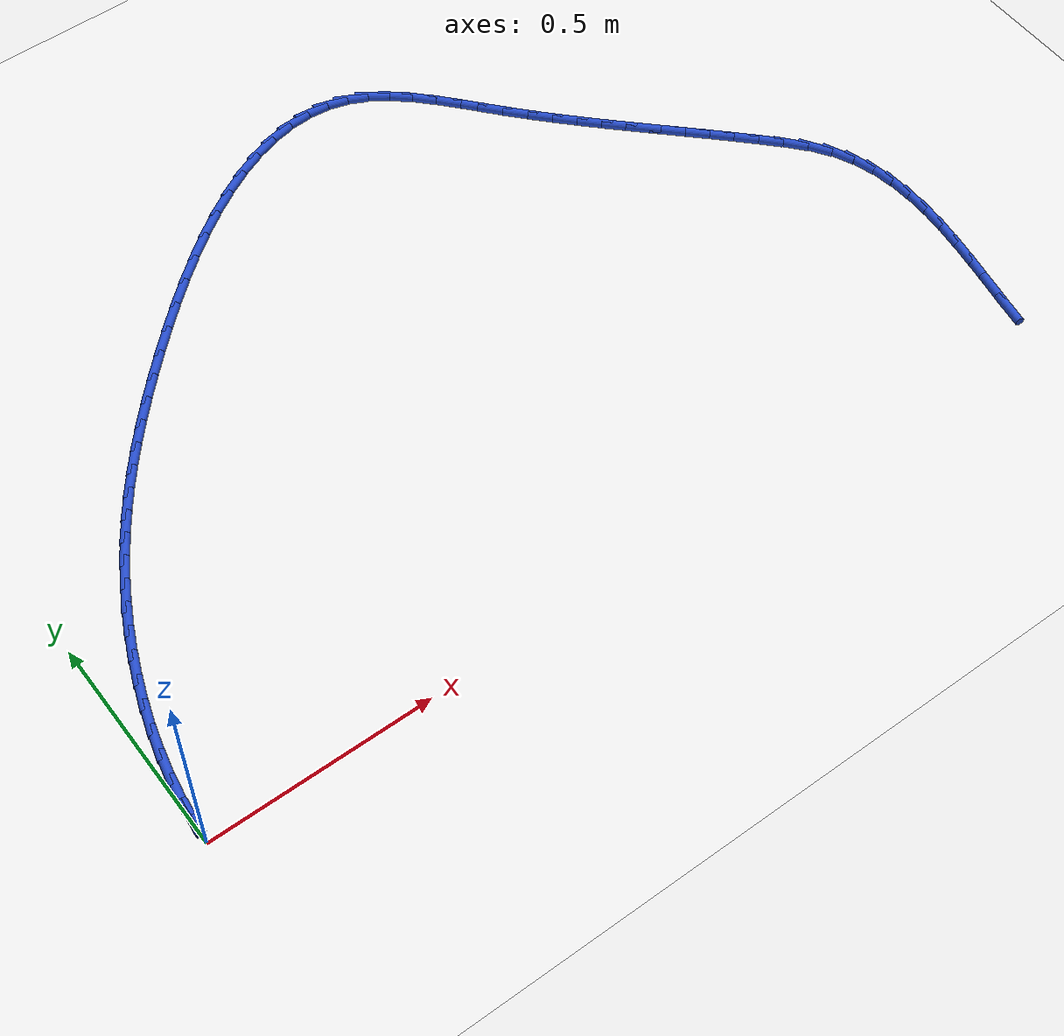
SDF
<sdf version="1.6">
 <world name="default">
  <model name="ground_plane">
   <static>1</static>
   <link name="link">
    <collision name="collision">
     <geometry><plane><normal>0 0 1</normal><size>100 100</size></plane></geometry>
     <surface><friction><ode><mu>100</mu><mu2>50</mu2></ode></friction></surface>
    </collision>
    <visual name="visual">
     <cast_shadows>0</cast_shadows>
     <geometry><plane><normal>0 0 1</normal><size>100 100</size></plane></geometry>
     <material>
      <script><uri>file://media/materials/scripts/gazebo.material</uri><name>Gazebo/WhiteGlow</name></script>
     </material>
    </visual>
   </link>
  </model>
  <model name="line">
   <link name="link_1">
    <pose>0.002819919570974146 0.056490121676329885 0.01 0 1.57 1.4621174501277217</pose>
    <collision name="collision">
     <geometry><cylinder><radius>0.01</radius><length>0.08</length></cylinder></geometry>
    </collision>
    <visual name="visual">
     <material>
      <script><name>Gazebo/Blue</name><uri>file://media/materials/scripts/gazebo.material</uri></script>
     </material>
     <geometry><cylinder><radius>0.01</radius><length>0.08</length></cylinder></geometry>
    </visual>
   </link>
   <link name="link_2">
    <pose>0.008960273449039987 0.11276747965549035 0.01 0 1.57 1.4073476853704212</pose>
    <collision name="collision">
     <geometry><cylinder><radius>0.01</radius><length>0.08</length></cylinder></geometry>
    </collision>
    <visual name="visual">
     <material>
      <script><name>Gazebo/Blue</name><uri>file://media/materials/scripts/gazebo.material</uri></script>
     </material>
     <geometry><cylinder><radius>0.01</radius><length>0.08</length></cylinder></geometry>
    </visual>
   </link>
   <link name="link_3">
    <pose>0.01817760805894254 0.168657245358841 0.01 0 1.57 1.3563356559412718</pose>
    <collision name="collision">
     <geometry><cylinder><radius>0.01</radius><length>0.08</length></cylinder></geometry>
    </collision>
    <visual name="visual">
     <material>
      <script><name>Gazebo/Blue</name><uri>file://media/materials/scripts/gazebo.material</uri></script>
     </material>
     <geometry><cylinder><radius>0.01</radius><length>0.08</length></cylinder></geometry>
    </visual>
   </link>
   <link name="link_4">
    <pose>0.030228469825426825 0.22398459020774156 0.01 0 1.57 1.3087651385781736</pose>
    <collision name="collision">
     <geometry><cylinder><radius>0.01</radius><length>0.08</length></cylinder></geometry>
    </collision>
    <visual name="visual">
     <material>
      <script><name>Gazebo/Blue</name><uri>file://media/materials/scripts/gazebo.material</uri></script>
     </material>
     <geometry><cylinder><radius>0.01</radius><length>0.08</length></cylinder></geometry>
    </visual>
   </link>
   <link name="link_5">
    <pose>0.0448694051732378 0.27857468562355153 0.01 0 1.57 1.2642975209456055</pose>
    <collision name="collision">
     <geometry><cylinder><radius>0.01</radius><length>0.08</length></cylinder></geometry>
    </collision>
    <visual name="visual">
     <material>
      <script><name>Gazebo/Blue</name><uri>file://media/materials/scripts/gazebo.material</uri></script>
     </material>
     <geometry><cylinder><radius>0.01</radius><length>0.08</length></cylinder></geometry>
    </visual>
   </link>
   <link name="link_6">
    <pose>0.0618569605271205 0.3322527030276306 0.01 0 1.57 1.2225849859284923</pose>
    <collision name="collision">
     <geometry><cylinder><radius>0.01</radius><length>0.08</length></cylinder></geometry>
    </collision>
    <visual name="visual">
     <material>
      <script><name>Gazebo/Blue</name><uri>file://media/materials/scripts/gazebo.material</uri></script>
     </material>
     <geometry><cylinder><radius>0.01</radius><length>0.08</length></cylinder></geometry>
    </visual>
   </link>
   <link name="link_7">
    <pose>0.08094768231181988 0.38484381384133826 0.01 0 1.57 1.1832780474981412</pose>
    <collision name="collision">
     <geometry><cylinder><radius>0.01</radius><length>0.08</length></cylinder></geometry>
    </collision>
    <visual name="visual">
     <material>
      <script><name>Gazebo/Blue</name><uri>file://media/materials/scripts/gazebo.material</uri></script>
     </material>
     <geometry><cylinder><radius>0.01</radius><length>0.08</length></cylinder></geometry>
    </visual>
   </link>
   <link name="link_8">
    <pose>0.10189811695208095 0.43617318948603423 0.01 0 1.57 1.145996750374766</pose>
    <collision name="collision">
     <geometry><cylinder><radius>0.01</radius><length>0.08</length></cylinder></geometry>
    </collision>
    <visual name="visual">
     <material>
      <script><name>Gazebo/Blue</name><uri>file://media/materials/scripts/gazebo.material</uri></script>
     </material>
     <geometry><cylinder><radius>0.01</radius><length>0.08</length></cylinder></geometry>
    </visual>
   </link>
   <link name="link_9">
    <pose>0.12446895710282029 0.48607095541483086 0.01 0 1.57 1.109494843385933</pose>
    <collision name="collision">
     <geometry><cylinder><radius>0.01</radius><length>0.08</length></cylinder></geometry>
    </collision>
    <visual name="visual">
     <material>
      <script><name>Gazebo/Blue</name><uri>file://media/materials/scripts/gazebo.material</uri></script>
     </material>
     <geometry><cylinder><radius>0.01</radius><length>0.08</length></cylinder></geometry>
    </visual>
   </link>
   <link name="link_10">
    <pose>0.14855567423796337 0.5345282745826981 0.01 0 1.57 1.072863857502739</pose>
    <collision name="collision">
     <geometry><cylinder><radius>0.01</radius><length>0.08</length></cylinder></geometry>
    </collision>
    <visual name="visual">
     <material>
      <script><name>Gazebo/Blue</name><uri>file://media/materials/scripts/gazebo.material</uri></script>
     </material>
     <geometry><cylinder><radius>0.01</radius><length>0.08</length></cylinder></geometry>
    </visual>
   </link>
   <link name="link_11">
    <pose>0.17421491539654277 0.5817288870168512 0.01 0 1.57 1.0365428703813302</pose>
    <collision name="collision">
     <geometry><cylinder><radius>0.01</radius><length>0.08</length></cylinder></geometry>
    </collision>
    <visual name="visual">
     <material>
      <script><name>Gazebo/Blue</name><uri>file://media/materials/scripts/gazebo.material</uri></script>
     </material>
     <geometry><cylinder><radius>0.01</radius><length>0.08</length></cylinder></geometry>
    </visual>
   </link>
   <link name="link_12">
    <pose>0.20151280619651218 0.6278678580156556 0.01 0 1.57 1.0010392766066787</pose>
    <collision name="collision">
     <geometry><cylinder><radius>0.01</radius><length>0.08</length></cylinder></geometry>
    </collision>
    <visual name="visual">
     <material>
      <script><name>Gazebo/Blue</name><uri>file://media/materials/scripts/gazebo.material</uri></script>
     </material>
     <geometry><cylinder><radius>0.01</radius><length>0.08</length></cylinder></geometry>
    </visual>
   </link>
   <link name="link_13">
    <pose>0.230515472255825 0.6731402528774764 0.01 0 1.57 0.9668291918626433</pose>
    <collision name="collision">
     <geometry><cylinder><radius>0.01</radius><length>0.08</length></cylinder></geometry>
    </collision>
    <visual name="visual">
     <material>
      <script><name>Gazebo/Blue</name><uri>file://media/materials/scripts/gazebo.material</uri></script>
     </material>
     <geometry><cylinder><radius>0.01</radius><length>0.08</length></cylinder></geometry>
    </visual>
   </link>
   <link name="link_14">
    <pose>0.261289039192435 0.7177411369006796 0.01 0 1.57 0.9343338689393622</pose>
    <collision name="collision">
     <geometry><cylinder><radius>0.01</radius><length>0.08</length></cylinder></geometry>
    </collision>
    <visual name="visual">
     <material>
      <script><name>Gazebo/Blue</name><uri>file://media/materials/scripts/gazebo.material</uri></script>
     </material>
     <geometry><cylinder><radius>0.01</radius><length>0.08</length></cylinder></geometry>
    </visual>
   </link>
   <link name="link_15">
    <pose>0.29389963262429575 0.7618655753836305 0.01 0 1.57 0.9039022386405081</pose>
    <collision name="collision">
     <geometry><cylinder><radius>0.01</radius><length>0.08</length></cylinder></geometry>
    </collision>
    <visual name="visual">
     <material>
      <script><name>Gazebo/Blue</name><uri>file://media/materials/scripts/gazebo.material</uri></script>
     </material>
     <geometry><cylinder><radius>0.01</radius><length>0.08</length></cylinder></geometry>
    </visual>
   </link>
   <link name="link_16">
    <pose>0.32841337816936067 0.8057086336246942 0.01 0 1.57 0.8758008942139772</pose>
    <collision name="collision">
     <geometry><cylinder><radius>0.01</radius><length>0.08</length></cylinder></geometry>
    </collision>
    <visual name="visual">
     <material>
      <script><name>Gazebo/Blue</name><uri>file://media/materials/scripts/gazebo.material</uri></script>
     </material>
     <geometry><cylinder><radius>0.01</radius><length>0.08</length></cylinder></geometry>
    </visual>
   </link>
   <link name="link_17">
    <pose>0.3648964014455836 0.8494653769222366 0.01 0 1.57 0.8502115110153994</pose>
    <collision name="collision">
     <geometry><cylinder><radius>0.01</radius><length>0.08</length></cylinder></geometry>
    </collision>
    <visual name="visual">
     <material>
      <script><name>Gazebo/Blue</name><uri>file://media/materials/scripts/gazebo.material</uri></script>
     </material>
     <geometry><cylinder><radius>0.01</radius><length>0.08</length></cylinder></geometry>
    </visual>
   </link>
   <link name="link_18">
    <pose>0.4034148280709179 0.8933308705746227 0.01 0 1.57 0.8272346232028235</pose>
    <collision name="collision">
     <geometry><cylinder><radius>0.01</radius><length>0.08</length></cylinder></geometry>
    </collision>
    <visual name="visual">
     <material>
      <script><name>Gazebo/Blue</name><uri>file://media/materials/scripts/gazebo.material</uri></script>
     </material>
     <geometry><cylinder><radius>0.01</radius><length>0.08</length></cylinder></geometry>
    </visual>
   </link>
   <link name="link_19">
    <pose>0.4440347836633174 0.9375001798802183 0.01 0 1.57 0.8068980558954781</pose>
    <collision name="collision">
     <geometry><cylinder><radius>0.01</radius><length>0.08</length></cylinder></geometry>
    </collision>
    <visual name="visual">
     <material>
      <script><name>Gazebo/Blue</name><uri>file://media/materials/scripts/gazebo.material</uri></script>
     </material>
     <geometry><cylinder><radius>0.01</radius><length>0.08</length></cylinder></geometry>
    </visual>
   </link>
   <link name="link_20">
    <pose>0.48682239384073556 0.9821683701373887 0.01 0 1.57 0.7886387347803969</pose>
    <collision name="collision">
     <geometry><cylinder><radius>0.01</radius><length>0.08</length></cylinder></geometry>
    </collision>
    <visual name="visual">
     <material>
      <script><name>Gazebo/Blue</name><uri>file://media/materials/scripts/gazebo.material</uri></script>
     </material>
     <geometry><cylinder><radius>0.01</radius><length>0.08</length></cylinder></geometry>
    </visual>
   </link>
   <link name="link_21">
    <pose>0.5318098261136897 1.0274483213339718 0.01 0 1.57 0.7687296846587847</pose>
    <collision name="collision">
     <geometry><cylinder><radius>0.01</radius><length>0.08</length></cylinder></geometry>
    </collision>
    <visual name="visual">
     <material>
      <script><name>Gazebo/Blue</name><uri>file://media/materials/scripts/gazebo.material</uri></script>
     </material>
     <geometry><cylinder><radius>0.01</radius><length>0.08</length></cylinder></geometry>
    </visual>
   </link>
   <link name="link_22">
    <pose>0.578799614929389 1.0728971562015825 0.01 0 1.57 0.7453216884678633</pose>
    <collision name="collision">
     <geometry><cylinder><radius>0.01</radius><length>0.08</length></cylinder></geometry>
    </collision>
    <visual name="visual">
     <material>
      <script><name>Gazebo/Blue</name><uri>file://media/materials/scripts/gazebo.material</uri></script>
     </material>
     <geometry><cylinder><radius>0.01</radius><length>0.08</length></cylinder></geometry>
    </visual>
   </link>
   <link name="link_23">
    <pose>0.6274991670624809 1.1178417697618857 0.01 0 1.57 0.7178650219491076</pose>
    <collision name="collision">
     <geometry><cylinder><radius>0.01</radius><length>0.08</length></cylinder></geometry>
    </collision>
    <visual name="visual">
     <material>
      <script><name>Gazebo/Blue</name><uri>file://media/materials/scripts/gazebo.material</uri></script>
     </material>
     <geometry><cylinder><radius>0.01</radius><length>0.08</length></cylinder></geometry>
    </visual>
   </link>
   <link name="link_24">
    <pose>0.6776155844054452 1.1616083191616333 0.01 0 1.57 0.6856206827919231</pose>
    <collision name="collision">
     <geometry><cylinder><radius>0.01</radius><length>0.08</length></cylinder></geometry>
    </collision>
    <visual name="visual">
     <material>
      <script><name>Gazebo/Blue</name><uri>file://media/materials/scripts/gazebo.material</uri></script>
     </material>
     <geometry><cylinder><radius>0.01</radius><length>0.08</length></cylinder></geometry>
    </visual>
   </link>
   <link name="link_25">
    <pose>0.7288559688507629 1.2035229615475784 0.01 0 1.57 0.6476095234773996</pose>
    <collision name="collision">
     <geometry><cylinder><radius>0.01</radius><length>0.08</length></cylinder></geometry>
    </collision>
    <visual name="visual">
     <material>
      <script><name>Gazebo/Blue</name><uri>file://media/materials/scripts/gazebo.material</uri></script>
     </material>
     <geometry><cylinder><radius>0.01</radius><length>0.08</length></cylinder></geometry>
    </visual>
   </link>
   <link name="link_26">
    <pose>0.7809274222909137 1.2429118540664734 0.01 0 1.57 0.6025478072712656</pose>
    <collision name="collision">
     <geometry><cylinder><radius>0.01</radius><length>0.08</length></cylinder></geometry>
    </collision>
    <visual name="visual">
     <material>
      <script><name>Gazebo/Blue</name><uri>file://media/materials/scripts/gazebo.material</uri></script>
     </material>
     <geometry><cylinder><radius>0.01</radius><length>0.08</length></cylinder></geometry>
    </visual>
   </link>
   <link name="link_27">
    <pose>0.8335370466183781 1.2791011538650707 0.01 0 1.57 0.5487649475698154</pose>
    <collision name="collision">
     <geometry><cylinder><radius>0.01</radius><length>0.08</length></cylinder></geometry>
    </collision>
    <visual name="visual">
     <material>
      <script><name>Gazebo/Blue</name><uri>file://media/materials/scripts/gazebo.material</uri></script>
     </material>
     <geometry><cylinder><radius>0.01</radius><length>0.08</length></cylinder></geometry>
    </visual>
   </link>
   <link name="link_28">
    <pose>0.8863919437256369 1.3114170180901232 0.01 0 1.57 0.48411135698266355</pose>
    <collision name="collision">
     <geometry><cylinder><radius>0.01</radius><length>0.08</length></cylinder></geometry>
    </collision>
    <visual name="visual">
     <material>
      <script><name>Gazebo/Blue</name><uri>file://media/materials/scripts/gazebo.material</uri></script>
     </material>
     <geometry><cylinder><radius>0.01</radius><length>0.08</length></cylinder></geometry>
    </visual>
   </link>
   <link name="link_29">
    <pose>0.9391992155051698 1.3391856038883834 0.01 0 1.57 0.4058851109227557</pose>
    <collision name="collision">
     <geometry><cylinder><radius>0.01</radius><length>0.08</length></cylinder></geometry>
    </collision>
    <visual name="visual">
     <material>
      <script><name>Gazebo/Blue</name><uri>file://media/materials/scripts/gazebo.material</uri></script>
     </material>
     <geometry><cylinder><radius>0.01</radius><length>0.08</length></cylinder></geometry>
    </visual>
   </link>
   <link name="link_30">
    <pose>0.9916659638494573 1.3617330684066034 0.01 0 1.57 0.31085468229046403</pose>
    <collision name="collision">
     <geometry><cylinder><radius>0.01</radius><length>0.08</length></cylinder></geometry>
    </collision>
    <visual name="visual">
     <material>
      <script><name>Gazebo/Blue</name><uri>file://media/materials/scripts/gazebo.material</uri></script>
     </material>
     <geometry><cylinder><radius>0.01</radius><length>0.08</length></cylinder></geometry>
    </visual>
   </link>
   <link name="link_31">
    <pose>1.0434992906509803 1.3783855687915367 0.01 0 1.57 0.19554935793608433</pose>
    <collision name="collision">
     <geometry><cylinder><radius>0.01</radius><length>0.08</length></cylinder></geometry>
    </collision>
    <visual name="visual">
     <material>
      <script><name>Gazebo/Blue</name><uri>file://media/materials/scripts/gazebo.material</uri></script>
     </material>
     <geometry><cylinder><radius>0.01</radius><length>0.08</length></cylinder></geometry>
    </visual>
   </link>
   <link name="link_32">
    <pose>1.0944062978022182 1.3884692621899346 0.01 0 1.57 0.05711571325592787</pose>
    <collision name="collision">
     <geometry><cylinder><radius>0.01</radius><length>0.08</length></cylinder></geometry>
    </collision>
    <visual name="visual">
     <material>
      <script><name>Gazebo/Blue</name><uri>file://media/materials/scripts/gazebo.material</uri></script>
     </material>
     <geometry><cylinder><radius>0.01</radius><length>0.08</length></cylinder></geometry>
    </visual>
   </link>
   <link name="link_33">
    <pose>1.1440940871956522 1.391310305748551 0.01 0 1.57 -0.10496574208119298</pose>
    <collision name="collision">
     <geometry><cylinder><radius>0.01</radius><length>0.08</length></cylinder></geometry>
    </collision>
    <visual name="visual">
     <material>
      <script><name>Gazebo/Blue</name><uri>file://media/materials/scripts/gazebo.material</uri></script>
     </material>
     <geometry><cylinder><radius>0.01</radius><length>0.08</length></cylinder></geometry>
    </visual>
   </link>
   <link name="link_34">
    <pose>1.1922697607237625 1.3862348566141376 0.01 0 1.57 -0.2865943151585802</pose>
    <collision name="collision">
     <geometry><cylinder><radius>0.01</radius><length>0.08</length></cylinder></geometry>
    </collision>
    <visual name="visual">
     <material>
      <script><name>Gazebo/Blue</name><uri>file://media/materials/scripts/gazebo.material</uri></script>
     </material>
     <geometry><cylinder><radius>0.01</radius><length>0.08</length></cylinder></geometry>
    </visual>
   </link>
   <link name="link_35">
    <pose>1.2386404202790287 1.3725690719334465 0.01 0 1.57 -0.47547303529742274</pose>
    <collision name="collision">
     <geometry><cylinder><radius>0.01</radius><length>0.08</length></cylinder></geometry>
    </collision>
    <visual name="visual">
     <material>
      <script><name>Gazebo/Blue</name><uri>file://media/materials/scripts/gazebo.material</uri></script>
     </material>
     <geometry><cylinder><radius>0.01</radius><length>0.08</length></cylinder></geometry>
    </visual>
   </link>
   <link name="link_36">
    <pose>1.2829452652636237 1.3497578186542667 0.01 0 1.57 -0.6324951295664263</pose>
    <collision name="collision">
     <geometry><cylinder><radius>0.01</radius><length>0.08</length></cylinder></geometry>
    </collision>
    <visual name="visual">
     <material>
      <script><name>Gazebo/Blue</name><uri>file://media/materials/scripts/gazebo.material</uri></script>
     </material>
     <geometry><cylinder><radius>0.01</radius><length>0.08</length></cylinder></geometry>
    </visual>
   </link>
   <link name="link_37">
    <pose>1.3253170979953093 1.3187016692992026 0.01 0 1.57 -0.7418328594843889</pose>
    <collision name="collision">
     <geometry><cylinder><radius>0.01</radius><length>0.08</length></cylinder></geometry>
    </collision>
    <visual name="visual">
     <material>
      <script><name>Gazebo/Blue</name><uri>file://media/materials/scripts/gazebo.material</uri></script>
     </material>
     <geometry><cylinder><radius>0.01</radius><length>0.08</length></cylinder></geometry>
    </visual>
   </link>
   <link name="link_38">
    <pose>1.3661527283320258 1.2812776049305603 0.01 0 1.57 -0.8123022712665977</pose>
    <collision name="collision">
     <geometry><cylinder><radius>0.01</radius><length>0.08</length></cylinder></geometry>
    </collision>
    <visual name="visual">
     <material>
      <script><name>Gazebo/Blue</name><uri>file://media/materials/scripts/gazebo.material</uri></script>
     </material>
     <geometry><cylinder><radius>0.01</radius><length>0.08</length></cylinder></geometry>
    </visual>
   </link>
   <link name="link_39">
    <pose>1.4058538416389632 1.2393806382430377 0.01 0 1.57 -0.8512945574252635</pose>
    <collision name="collision">
     <geometry><cylinder><radius>0.01</radius><length>0.08</length></cylinder></geometry>
    </collision>
    <visual name="visual">
     <material>
      <script><name>Gazebo/Blue</name><uri>file://media/materials/scripts/gazebo.material</uri></script>
     </material>
     <geometry><cylinder><radius>0.01</radius><length>0.08</length></cylinder></geometry>
    </visual>
   </link>
   <link name="link_40">
    <pose>1.4448221232813099 1.1949057819313316 0.01 0 1.57 -0.8630578590057346</pose>
    <collision name="collision">
     <geometry><cylinder><radius>0.01</radius><length>0.08</length></cylinder></geometry>
    </collision>
    <visual name="visual">
     <material>
      <script><name>Gazebo/Blue</name><uri>file://media/materials/scripts/gazebo.material</uri></script>
     </material>
     <geometry><cylinder><radius>0.01</radius><length>0.08</length></cylinder></geometry>
    </visual>
   </link>
   <link name="link_41">
    <pose>1.4834592586242554 1.1497480486901388 0.01 0 1.57 -0.8504185631487164</pose>
    <collision name="collision">
     <geometry><cylinder><radius>0.01</radius><length>0.08</length></cylinder></geometry>
    </collision>
    <visual name="visual">
     <material>
      <script><name>Gazebo/Blue</name><uri>file://media/materials/scripts/gazebo.material</uri></script>
     </material>
     <geometry><cylinder><radius>0.01</radius><length>0.08</length></cylinder></geometry>
    </visual>
   </link>
   <link name="link_42">
    <pose>1.5221418002145723 1.1056772569272575 0.01 0 1.57 -0.8301336715738815</pose>
    <collision name="collision">
     <geometry><cylinder><radius>0.01</radius><length>0.08</length></cylinder></geometry>
    </collision>
    <visual name="visual">
     <material>
      <script><name>Gazebo/Blue</name><uri>file://media/materials/scripts/gazebo.material</uri></script>
     </material>
     <geometry><cylinder><radius>0.01</radius><length>0.08</length></cylinder></geometry>
    </visual>
   </link>
   <link name="link_43">
    <pose>1.5609902370810582 1.063187694029606 0.01 0 1.57 -0.8125128754998437</pose>
    <collision name="collision">
     <geometry><cylinder><radius>0.01</radius><length>0.08</length></cylinder></geometry>
    </collision>
    <visual name="visual">
     <material>
      <script><name>Gazebo/Blue</name><uri>file://media/materials/scripts/gazebo.material</uri></script>
     </material>
     <geometry><cylinder><radius>0.01</radius><length>0.08</length></cylinder></geometry>
    </visual>
   </link>
   <link name="link_44">
    <pose>1.5999755267033007 1.0220287848159157 0.01 0 1.57 -0.7979884071429393</pose>
    <collision name="collision">
     <geometry><cylinder><radius>0.01</radius><length>0.08</length></cylinder></geometry>
    </collision>
    <visual name="visual">
     <material>
      <script><name>Gazebo/Blue</name><uri>file://media/materials/scripts/gazebo.material</uri></script>
     </material>
     <geometry><cylinder><radius>0.01</radius><length>0.08</length></cylinder></geometry>
    </visual>
   </link>
   <link name="link_45">
    <pose>1.6390667524440248 0.9819406185532705 0.01 0 1.57 -0.7868143245334275</pose>
    <collision name="collision">
     <geometry><cylinder><radius>0.01</radius><length>0.08</length></cylinder></geometry>
    </collision>
    <visual name="visual">
     <material>
      <script><name>Gazebo/Blue</name><uri>file://media/materials/scripts/gazebo.material</uri></script>
     </material>
     <geometry><cylinder><radius>0.01</radius><length>0.08</length></cylinder></geometry>
    </visual>
   </link>
   <link name="link_46">
    <pose>1.6782329976659542 0.9426632845087535 0.01 0 1.57 -0.7791889075430788</pose>
    <collision name="collision">
     <geometry><cylinder><radius>0.01</radius><length>0.08</length></cylinder></geometry>
    </collision>
    <visual name="visual">
     <material>
      <script><name>Gazebo/Blue</name><uri>file://media/materials/scripts/gazebo.material</uri></script>
     </material>
     <geometry><cylinder><radius>0.01</radius><length>0.08</length></cylinder></geometry>
    </visual>
   </link>
   <link name="link_47">
    <pose>1.7174433457318135 0.9039368719494476 0.01 0 1.57 -0.7752498733345753</pose>
    <collision name="collision">
     <geometry><cylinder><radius>0.01</radius><length>0.08</length></cylinder></geometry>
    </collision>
    <visual name="visual">
     <material>
      <script><name>Gazebo/Blue</name><uri>file://media/materials/scripts/gazebo.material</uri></script>
     </material>
     <geometry><cylinder><radius>0.01</radius><length>0.08</length></cylinder></geometry>
    </visual>
   </link>
   <link name="link_48">
    <pose>1.7566668800043255 0.8655014701424377 0.01 0 1.57 -0.7750712406931958</pose>
    <collision name="collision">
     <geometry><cylinder><radius>0.01</radius><length>0.08</length></cylinder></geometry>
    </collision>
    <visual name="visual">
     <material>
      <script><name>Gazebo/Blue</name><uri>file://media/materials/scripts/gazebo.material</uri></script>
     </material>
     <geometry><cylinder><radius>0.01</radius><length>0.08</length></cylinder></geometry>
    </visual>
   </link>
   <link name="link_49">
    <pose>1.7958726838462156 0.8270971683548062 0.01 0 1.57 -0.7786616351594543</pose>
    <collision name="collision">
     <geometry><cylinder><radius>0.01</radius><length>0.08</length></cylinder></geometry>
    </collision>
    <visual name="visual">
     <material>
      <script><name>Gazebo/Blue</name><uri>file://media/materials/scripts/gazebo.material</uri></script>
     </material>
     <geometry><cylinder><radius>0.01</radius><length>0.08</length></cylinder></geometry>
    </visual>
   </link>
   <link name="link_50">
    <pose>1.8350298406202075 0.7884640558536365 0.01 0 1.57 -0.7859639076205709</pose>
    <collision name="collision">
     <geometry><cylinder><radius>0.01</radius><length>0.08</length></cylinder></geometry>
    </collision>
    <visual name="visual">
     <material>
      <script><name>Gazebo/Blue</name><uri>file://media/materials/scripts/gazebo.material</uri></script>
     </material>
     <geometry><cylinder><radius>0.01</radius><length>0.08</length></cylinder></geometry>
    </visual>
   </link>
   <link name="link_51">
    <pose>1.8741074336890253 0.7493422219060126 0.01 0 1.57 -0.796856073211037</pose>
    <collision name="collision">
     <geometry><cylinder><radius>0.01</radius><length>0.08</length></cylinder></geometry>
    </collision>
    <visual name="visual">
     <material>
      <script><name>Gazebo/Blue</name><uri>file://media/materials/scripts/gazebo.material</uri></script>
     </material>
     <geometry><cylinder><radius>0.01</radius><length>0.08</length></cylinder></geometry>
    </visual>
   </link>
   <link name="link_52">
    <pose>1.9130745464153924 0.7094717557790179 0.01 0 1.57 -0.8120890033824932</pose>
    <collision name="collision">
     <geometry><cylinder><radius>0.01</radius><length>0.08</length></cylinder></geometry>
    </collision>
    <visual name="visual">
     <material>
      <script><name>Gazebo/Blue</name><uri>file://media/materials/scripts/gazebo.material</uri></script>
     </material>
     <geometry><cylinder><radius>0.01</radius><length>0.08</length></cylinder></geometry>
    </visual>
   </link>
   <link name="link_53">
    <pose>1.9518365364975498 0.668583324049895 0.01 0 1.57 -0.8655715669330843</pose>
    <collision name="collision">
     <geometry><cylinder><radius>0.01</radius><length>0.08</length></cylinder></geometry>
    </collision>
    <visual name="visual">
     <material>
      <script><name>Gazebo/Blue</name><uri>file://media/materials/scripts/gazebo.material</uri></script>
     </material>
     <geometry><cylinder><radius>0.01</radius><length>0.08</length></cylinder></geometry>
    </visual>
   </link>
   <link name="link_54">
    <pose>1.988025197633578 0.6260714165203164 0.01 0 1.57 -0.9981528101464966</pose>
    <collision name="collision">
     <geometry><cylinder><radius>0.01</radius><length>0.08</length></cylinder></geometry>
    </collision>
    <visual name="visual">
     <material>
      <script><name>Gazebo/Blue</name><uri>file://media/materials/scripts/gazebo.material</uri></script>
     </material>
     <geometry><cylinder><radius>0.01</radius><length>0.08</length></cylinder></geometry>
    </visual>
   </link>
   <link name="link_55">
    <pose>2.0170567934117845 0.5810405580967403 0.01 0 1.57 -1.1530351629916178</pose>
    <collision name="collision">
     <geometry><cylinder><radius>0.01</radius><length>0.08</length></cylinder></geometry>
    </collision>
    <visual name="visual">
     <material>
      <script><name>Gazebo/Blue</name><uri>file://media/materials/scripts/gazebo.material</uri></script>
     </material>
     <geometry><cylinder><radius>0.01</radius><length>0.08</length></cylinder></geometry>
    </visual>
   </link>
   <link name="link_56">
    <pose>2.03820054609295 0.5334076821818993 0.01 0 1.57 -1.2953889488225254</pose>
    <collision name="collision">
     <geometry><cylinder><radius>0.01</radius><length>0.08</length></cylinder></geometry>
    </collision>
    <visual name="visual">
     <material>
      <script><name>Gazebo/Blue</name><uri>file://media/materials/scripts/gazebo.material</uri></script>
     </material>
     <geometry><cylinder><radius>0.01</radius><length>0.08</length></cylinder></geometry>
    </visual>
   </link>
   <link name="link_57">
    <pose>2.05232574599381 0.4834226290827728 0.01 0 1.57 -1.4187723408697108</pose>
    <collision name="collision">
     <geometry><cylinder><radius>0.01</radius><length>0.08</length></cylinder></geometry>
    </collision>
    <visual name="visual">
     <material>
      <script><name>Gazebo/Blue</name><uri>file://media/materials/scripts/gazebo.material</uri></script>
     </material>
     <geometry><cylinder><radius>0.01</radius><length>0.08</length></cylinder></geometry>
    </visual>
   </link>
   <link name="link_58">
    <pose>2.0603057216836276 0.43133607929694506 0.01 0 1.57 -1.520630585506257</pose>
    <collision name="collision">
     <geometry><cylinder><radius>0.01</radius><length>0.08</length></cylinder></geometry>
    </collision>
    <visual name="visual">
     <material>
      <script><name>Gazebo/Blue</name><uri>file://media/materials/scripts/gazebo.material</uri></script>
     </material>
     <geometry><cylinder><radius>0.01</radius><length>0.08</length></cylinder></geometry>
    </visual>
   </link>
   <link name="link_59">
    <pose>2.0630138017316693 0.37739871332200126 0.01 0 1.57 1.5403670640742233</pose>
    <collision name="collision">
     <geometry><cylinder><radius>0.01</radius><length>0.08</length></cylinder></geometry>
    </collision>
    <visual name="visual">
     <material>
      <script><name>Gazebo/Blue</name><uri>file://media/materials/scripts/gazebo.material</uri></script>
     </material>
     <geometry><cylinder><radius>0.01</radius><length>0.08</length></cylinder></geometry>
    </visual>
   </link>
   <link name="link_60">
    <pose>2.0613233147071974 0.3218612116555263 0.01 0 1.57 1.479366161903502</pose>
    <collision name="collision">
     <geometry><cylinder><radius>0.01</radius><length>0.08</length></cylinder></geometry>
    </collision>
    <visual name="visual">
     <material>
      <script><name>Gazebo/Blue</name><uri>file://media/materials/scripts/gazebo.material</uri></script>
     </material>
     <geometry><cylinder><radius>0.01</radius><length>0.08</length></cylinder></geometry>
    </visual>
   </link>
   <link name="link_61">
    <pose>2.056107589179479 0.2649742547951046 0.01 0 1.57 1.4359376051450519</pose>
    <collision name="collision">
     <geometry><cylinder><radius>0.01</radius><length>0.08</length></cylinder></geometry>
    </collision>
    <visual name="visual">
     <material>
      <script><name>Gazebo/Blue</name><uri>file://media/materials/scripts/gazebo.material</uri></script>
     </material>
     <geometry><cylinder><radius>0.01</radius><length>0.08</length></cylinder></geometry>
    </visual>
   </link>
   <link name="link_62">
    <pose>2.0482399537177765 0.20698852323832043 0.01 0 1.57 1.4082852469660787</pose>
    <collision name="collision">
     <geometry><cylinder><radius>0.01</radius><length>0.08</length></cylinder></geometry>
    </collision>
    <visual name="visual">
     <material>
      <script><name>Gazebo/Blue</name><uri>file://media/materials/scripts/gazebo.material</uri></script>
     </material>
     <geometry><cylinder><radius>0.01</radius><length>0.08</length></cylinder></geometry>
    </visual>
   </link>
   <link name="link_63">
    <pose>2.0385937368913547 0.14815469748275886 0.01 0 1.57 1.3950864311635933</pose>
    <collision name="collision">
     <geometry><cylinder><radius>0.01</radius><length>0.08</length></cylinder></geometry>
    </collision>
    <visual name="visual">
     <material>
      <script><name>Gazebo/Blue</name><uri>file://media/materials/scripts/gazebo.material</uri></script>
     </material>
     <geometry><cylinder><radius>0.01</radius><length>0.08</length></cylinder></geometry>
    </visual>
   </link>
   <link name="link_64">
    <pose>2.0280422672694804 0.0887234580260051 0.01 0 1.57 1.3955670753986185</pose>
    <collision name="collision">
     <geometry><cylinder><radius>0.01</radius><length>0.08</length></cylinder></geometry>
    </collision>
    <visual name="visual">
     <material>
      <script><name>Gazebo/Blue</name><uri>file://media/materials/scripts/gazebo.material</uri></script>
     </material>
     <geometry><cylinder><radius>0.01</radius><length>0.08</length></cylinder></geometry>
    </visual>
   </link>
   <link name="link_65">
    <pose>2.0174588734214156 0.028945485365643286 0.01 0 1.57 1.4095016729728196</pose>
    <collision name="collision">
     <geometry><cylinder><radius>0.01</radius><length>0.08</length></cylinder></geometry>
    </collision>
    <visual name="visual">
     <material>
      <script><name>Gazebo/Blue</name><uri>file://media/materials/scripts/gazebo.material</uri></script>
     </material>
     <geometry><cylinder><radius>0.01</radius><length>0.08</length></cylinder></geometry>
    </visual>
   </link>
   <link name="link_131">
    <pose>0.0028716899227047184 0.05648569438436243 0.01 0 1.57 1.5200008165387326</pose>
    <collision name="collision">
     <geometry><cylinder><radius>0.01</radius><length>0.08</length></cylinder></geometry>
    </collision>
    <visual name="visual">
     <material>
      <script><name>Gazebo/Blue</name><uri>file://media/materials/scripts/gazebo.material</uri></script>
     </material>
     <geometry><cylinder><radius>0.01</radius><length>0.08</length></cylinder></geometry>
    </visual>
   </link>
  </model>
 </world>
</sdf>
